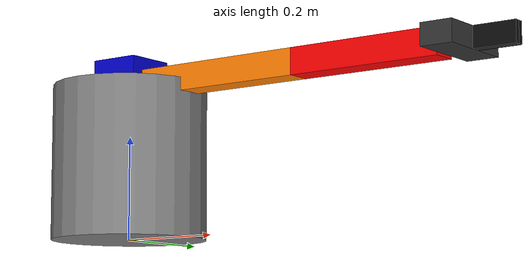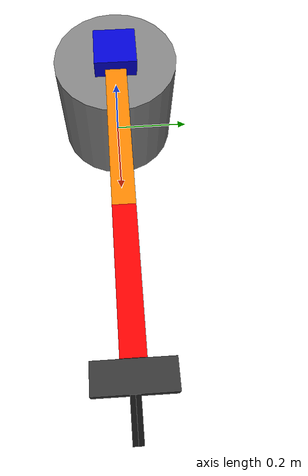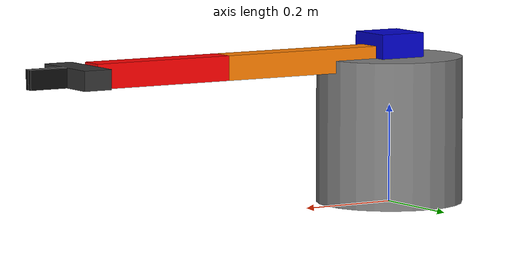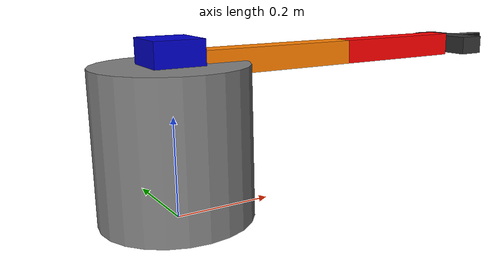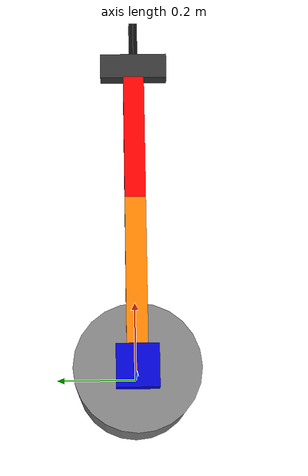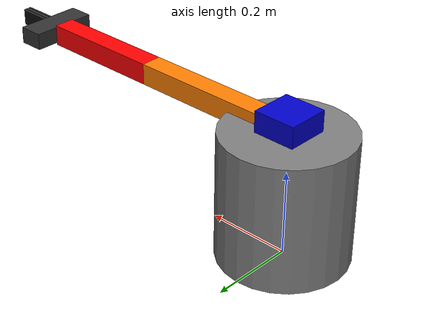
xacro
<?xml version="1.0"?>
<robot name="domestic_assistant"
       xmlns:xacro="http://www.ros.org/wiki/xacro">

  <!-- Import component files -->
  <xacro:include filename="base.xacro"/>
  <xacro:include filename="arm.xacro"/>
  <xacro:include filename="gripper.xacro"/>

  <!-- Robot parameters -->
  <xacro:property name="base_radius" value="0.15"/>
  <xacro:property name="base_height" value="0.30"/>

  <xacro:property name="lift_travel" value="0.70"/>

  <xacro:property name="link1_length" value="0.40"/>
  <xacro:property name="link2_length" value="0.30"/>

  <xacro:property name="gripper_span" value="0.12"/>

  <!-- Materials -->
  <material name="base_grey">
    <color rgba="0.5 0.5 0.5 1.0"/>
  </material>

  <material name="lift_blue">
    <color rgba="0.0 0.0 0.8 1.0"/>
  </material>

  <material name="link1_orange">
    <color rgba="1.0 0.5 0.0 1.0"/>
  </material>

  <material name="link2_red">
    <color rgba="1.0 0.0 0.0 1.0"/>
  </material>

  <material name="palm_dark">
    <color rgba="0.2 0.2 0.2 1.0"/>
  </material>

  <material name="finger_black">
    <color rgba="0.05 0.05 0.05 1.0"/>
  </material>

  <!-- Instantiate base -->
  <xacro:base
      name="base_link"
      base_radius="${base_radius}"
      base_height="${base_height}"/>

  <!-- Instantiate arm -->
  <xacro:arm
      parent="base_link"
      mount_z="${base_height}"
      link1_length="${link1_length}"
      link2_length="${link2_length}"
      lift_travel="${lift_travel}"/>

  <!-- Instantiate gripper -->
  <xacro:gripper
      parent="link2"
      attach_x="${link2_length}"
      gripper_span="${gripper_span}"/>

</robot>

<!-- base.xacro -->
<robot xmlns:xacro="http://www.ros.org/wiki/xacro">

  <xacro:macro name="base" params="name base_radius base_height">

    <link name="${name}">
      <visual>
        <origin xyz="0 0 ${base_height/2.0}" rpy="0 0 0"/>
        <geometry>
          <cylinder radius="${base_radius}" length="${base_height}"/>
        </geometry>
        <material name="base_grey"/>
      </visual>
    </link>

  </xacro:macro>

</robot>

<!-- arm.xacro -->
<robot xmlns:xacro="http://www.ros.org/wiki/xacro">

  <xacro:macro name="arm"
               params="parent mount_z link1_length link2_length lift_travel link_width:=0.05">

    <!-- Vertical lift carriage -->
    <link name="lift_link">
      <visual>
        <geometry>
          <box size="0.1 0.1 0.1"/>
        </geometry>
        <material name="lift_blue"/>
      </visual>
    </link>

    <joint name="lift_joint" type="prismatic">
      <parent link="${parent}"/>
      <child link="lift_link"/>
      <origin xyz="0 0 ${mount_z}" rpy="0 0 0"/>
      <axis xyz="0 0 1"/>
      <limit lower="0" upper="${lift_travel}"
             effort="200" velocity="0.2"/>
    </joint>

    <!-- First arm link -->
    <link name="link1">
      <visual>
        <origin xyz="${link1_length/2.0} 0 0"/>
        <geometry>
          <box size="${link1_length} ${link_width} ${link_width}"/>
        </geometry>
        <material name="link1_orange"/>
      </visual>
    </link>

    <joint name="shoulder_joint" type="revolute">
      <parent link="lift_link"/>
      <child link="link1"/>
      <origin xyz="0 0 0" rpy="0 0 0"/>
      <axis xyz="0 0 1"/>
      <limit lower="-1.57" upper="1.57"
             effort="100" velocity="1.0"/>
    </joint>

    <!-- Second arm link -->
    <link name="link2">
      <visual>
        <origin xyz="${link2_length/2.0} 0 0"/>
        <geometry>
          <box size="${link2_length} ${link_width} ${link_width}"/>
        </geometry>
        <material name="link2_red"/>
      </visual>
    </link>

    <joint name="elbow_joint" type="revolute">
      <parent link="link1"/>
      <child link="link2"/>
      <origin xyz="${link1_length} 0 0" rpy="0 0 0"/>
      <axis xyz="0 0 1"/>
      <limit lower="-2.5" upper="2.5"
             effort="100" velocity="1.0"/>
    </joint>

  </xacro:macro>

</robot>

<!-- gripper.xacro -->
<robot xmlns:xacro="http://www.ros.org/wiki/xacro">

  <xacro:macro name="gripper"
               params="parent attach_x gripper_span
                       palm_length:=0.06
                       finger_length:=0.08
                       finger_thickness:=0.01
                       finger_height:=0.04">

    <!-- Gripper palm -->
    <link name="gripper_base">

      <visual>
        <origin xyz="${palm_length/2.0} 0 0"/>
        <geometry>
          <box size="${palm_length}
                     ${gripper_span + 2*finger_thickness + 0.02}
                     ${finger_height}"/>
        </geometry>
        <material name="palm_dark"/>
      </visual>

    </link>

    <!-- Wrist rotation for pouring -->
    <joint name="wrist_roll_joint" type="revolute">
      <parent link="${parent}"/>
      <child link="gripper_base"/>
      <origin xyz="${attach_x} 0 0"/>
      <axis xyz="1 0 0"/>
      <limit lower="-1.57" upper="1.57"
             effort="20" velocity="1.0"/>
    </joint>

    <!-- Left finger -->
    <link name="finger_left">
      <visual>
        <geometry>
          <box size="${finger_length}
                     ${finger_thickness}
                     ${finger_height}"/>
        </geometry>
        <material name="finger_black"/>
      </visual>
    </link>

    <joint name="finger_left_joint" type="prismatic">
      <parent link="gripper_base"/>
      <child link="finger_left"/>
      <origin xyz="${palm_length + finger_length/2.0}
                   ${finger_thickness/2.0} 0"/>
      <axis xyz="0 1 0"/>
      <limit lower="0" upper="${gripper_span/2.0}"
             effort="40" velocity="0.1"/>
    </joint>

    <!-- Right finger -->
    <link name="finger_right">
      <visual>
        <geometry>
          <box size="${finger_length}
                     ${finger_thickness}
                     ${finger_height}"/>
        </geometry>
        <material name="finger_black"/>
      </visual>
    </link>

    <joint name="finger_right_joint" type="prismatic">
      <parent link="gripper_base"/>
      <child link="finger_right"/>
      <origin xyz="${palm_length + finger_length/2.0}
                   ${-finger_thickness/2.0} 0"/>
      <axis xyz="0 -1 0"/>
      <limit lower="0" upper="${gripper_span/2.0}"
             effort="40" velocity="0.1"/>
    </joint>

  </xacro:macro>

</robot>
